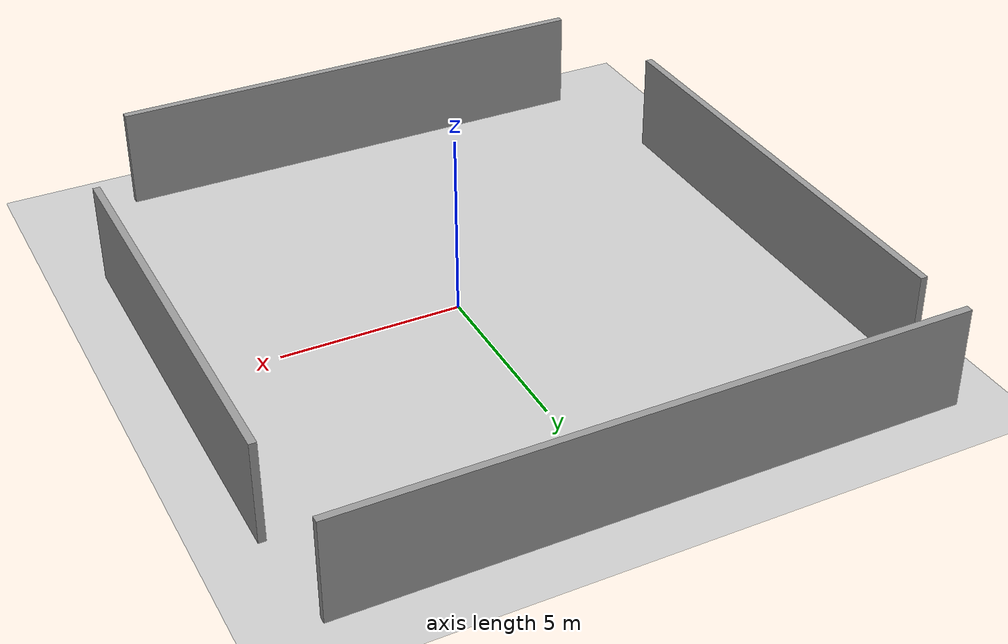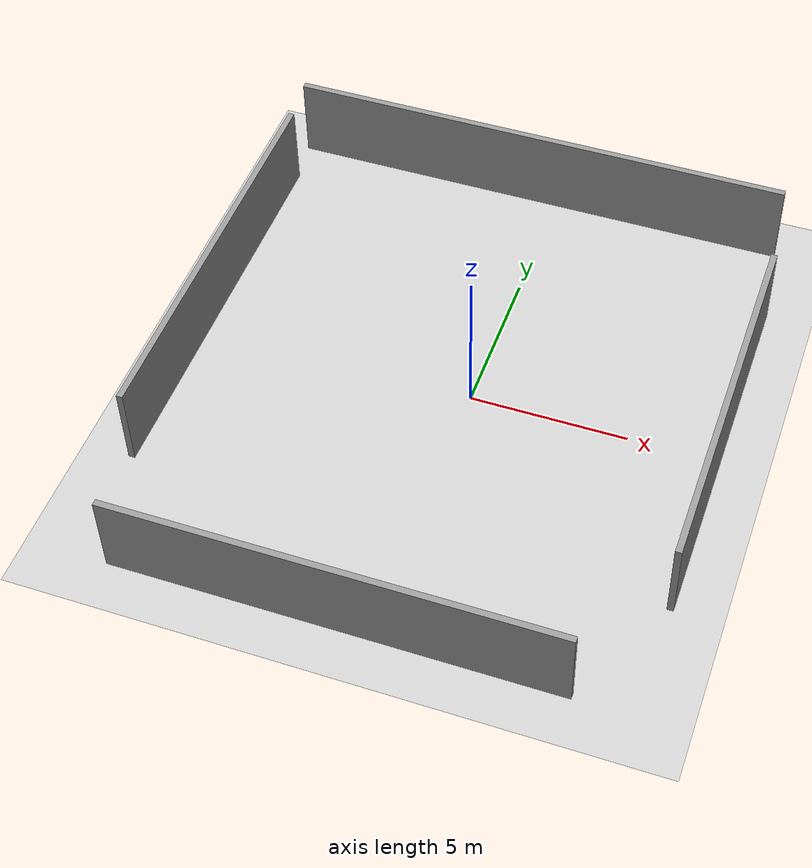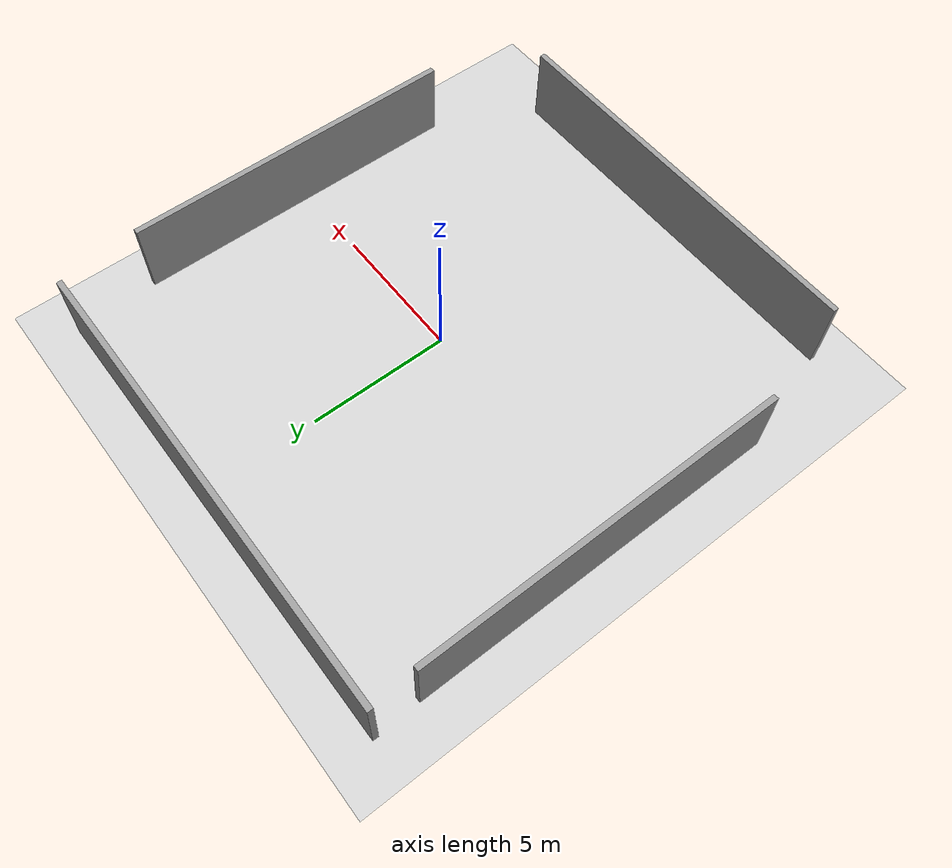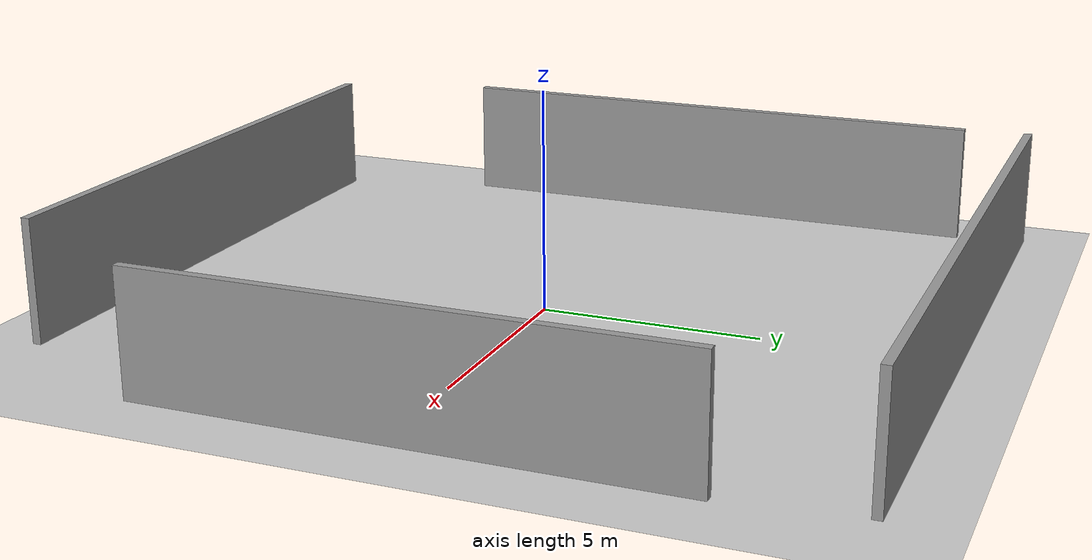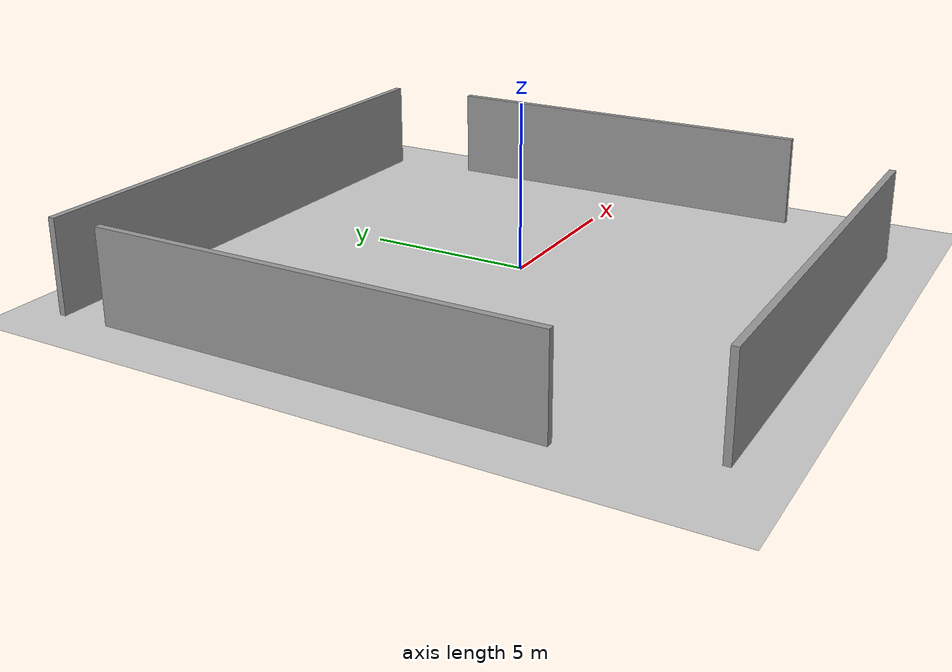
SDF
<sdf version="1.6">
 <world name="default">
  <light name="sun" type="directional">
   <pose>0 0 10 0 -0 0</pose>
   <diffuse>0.8 0.8 0.8 1</diffuse>
   <specular>0.2 0.2 0.2 1</specular>
   <attenuation>
    <range>1000</range>
    <constant>0.9</constant>
    <linear>0.01</linear>
    <quadratic>0.001</quadratic>
   </attenuation>
   <direction>-0.5 0.1 -0.9</direction>
  </light>
  <model name="ground_plane">
   <static>1</static>
   <link name="link">
    <collision name="collision">
     <geometry><plane><normal>0 0 1</normal><size>100 100</size></plane></geometry>
     <surface><friction><ode><mu>100</mu><mu2>50</mu2></ode></friction></surface>
    </collision>
    <visual name="visual">
     <cast_shadows>0</cast_shadows>
     <geometry><plane><normal>0 0 1</normal><size>100 100</size></plane></geometry>
     <material>
      <script><uri>file://media/materials/scripts/gazebo.material</uri><name>Gazebo/Grey</name></script>
     </material>
    </visual>
    <velocity_decay><linear>0</linear><angular>0</angular></velocity_decay>
   </link>
  </model>
  <physics name="default_physics" default="0" type="ode">
   <max_step_size>0.001</max_step_size>
   <real_time_factor>1</real_time_factor>
   <real_time_update_rate>1000</real_time_update_rate>
  </physics>
  <scene><ambient>0.4 0.4 0.4 1</ambient><background>0.7 0.7 0.7 1</background><shadows>1</shadows></scene>
  <spherical_coordinates>
   <surface_model>EARTH_WGS84</surface_model>
   <latitude_deg>0</latitude_deg>
   <longitude_deg>0</longitude_deg>
   <elevation>0</elevation>
   <heading_deg>0</heading_deg>
  </spherical_coordinates>
  <gravity>0 0 -9.8</gravity>
  <magnetic_field>6e-06 2.3e-05 -4.2e-05</magnetic_field>
  <atmosphere type="adiabatic"/>
  <model name="grey_wall">
   <link name="link">
    <pose>3.70961 1.62582 1.4 0 -0 0</pose>
    <velocity_decay><linear>0</linear><angular>0</angular></velocity_decay>
    <inertial>
     <inertia><ixx>0</ixx><ixy>0</ixy><ixz>0</ixz><iyy>0</iyy><iyz>0</iyz><izz>0</izz></inertia>
     <mass>0</mass>
    </inertial>
    <visual name="visual">
     <cast_shadows>0</cast_shadows>
     <geometry><box><size>16.6337 0.2 2.8</size></box></geometry>
     <material>
      <script>
       <uri>model://grey_wall/materials/scripts</uri>
       <uri>model://grey_wall/materials/textures</uri>
       <name>vrc/grey_wall</name>
      </script>
     </material>
    </visual>
    <collision name="collision">
     <geometry><box><size>16.6337 0.2 2.8</size></box></geometry>
     <surface>
      <friction>
       <ode><mu>1</mu><mu2>1</mu2><fdir1>0 0 0</fdir1><slip1>0</slip1><slip2>0</slip2></ode>
       <torsional>
        <coefficient>1</coefficient>
        <patch_radius>0</patch_radius>
        <surface_radius>0</surface_radius>
        <use_patch_radius>1</use_patch_radius>
        <ode><slip>0</slip></ode>
       </torsional>
      </friction>
      <bounce><restitution_coefficient>0</restitution_coefficient><threshold>1e+06</threshold></bounce>
      <contact>
       <collide_without_contact>0</collide_without_contact>
       <collide_without_contact_bitmask>1</collide_without_contact_bitmask>
       <collide_bitmask>1</collide_bitmask>
       <ode>
        <soft_cfm>0</soft_cfm>
        <soft_erp>0.2</soft_erp>
        <kp>1e+13</kp>
        <kd>1</kd>
        <max_vel>0.01</max_vel>
        <min_depth>0</min_depth>
       </ode>
       <bullet>
        <split_impulse>1</split_impulse>
        <split_impulse_penetration_threshold>-0.01</split_impulse_penetration_threshold>
        <soft_cfm>0</soft_cfm>
        <soft_erp>0.2</soft_erp>
        <kp>1e+13</kp>
        <kd>1</kd>
       </bullet>
      </contact>
     </surface>
    </collision>
   </link>
   <static>1</static>
   <pose>-4.48431 7.54607 0 0 -0 0</pose>
  </model>
  <model name="grey_wall_0">
   <link name="link">
    <pose>3.21001 -5.01815 1.4 0 -0 0</pose>
    <velocity_decay><linear>0</linear><angular>0</angular></velocity_decay>
    <inertial>
     <inertia><ixx>0</ixx><ixy>0</ixy><ixz>0</ixz><iyy>0</iyy><iyz>0</iyz><izz>0</izz></inertia>
     <mass>0</mass>
    </inertial>
    <visual name="visual">
     <cast_shadows>0</cast_shadows>
     <geometry><box><size>13.9336 0.2 2.8</size></box></geometry>
     <material>
      <script>
       <uri>model://grey_wall/materials/scripts</uri>
       <uri>model://grey_wall/materials/textures</uri>
       <name>vrc/grey_wall</name>
      </script>
     </material>
    </visual>
    <collision name="collision">
     <geometry><box><size>13.9336 0.2 2.8</size></box></geometry>
     <surface>
      <friction>
       <ode><mu>1</mu><mu2>1</mu2><fdir1>0 0 0</fdir1><slip1>0</slip1><slip2>0</slip2></ode>
       <torsional>
        <coefficient>1</coefficient>
        <patch_radius>0</patch_radius>
        <surface_radius>0</surface_radius>
        <use_patch_radius>1</use_patch_radius>
        <ode><slip>0</slip></ode>
       </torsional>
      </friction>
      <bounce><restitution_coefficient>0</restitution_coefficient><threshold>1e+06</threshold></bounce>
      <contact>
       <collide_without_contact>0</collide_without_contact>
       <collide_without_contact_bitmask>1</collide_without_contact_bitmask>
       <collide_bitmask>1</collide_bitmask>
       <ode>
        <soft_cfm>0</soft_cfm>
        <soft_erp>0.2</soft_erp>
        <kp>1e+13</kp>
        <kd>1</kd>
        <max_vel>0.01</max_vel>
        <min_depth>0</min_depth>
       </ode>
       <bullet>
        <split_impulse>1</split_impulse>
        <split_impulse_penetration_threshold>-0.01</split_impulse_penetration_threshold>
        <soft_cfm>0</soft_cfm>
        <soft_erp>0.2</soft_erp>
        <kp>1e+13</kp>
        <kd>1</kd>
       </bullet>
      </contact>
     </surface>
    </collision>
   </link>
   <static>1</static>
   <pose>-4.17438 -4.16628 0 0 -0 0</pose>
  </model>
  <model name="grey_wall_3">
   <link name="link">
    <pose>0.401574 1.3214 1.4 0 -0 0</pose>
    <velocity_decay><linear>0</linear><angular>0</angular></velocity_decay>
    <inertial>
     <inertia><ixx>0</ixx><ixy>0</ixy><ixz>0</ixz><iyy>0</iyy><iyz>0</iyz><izz>0</izz></inertia>
     <mass>0</mass>
    </inertial>
    <visual name="visual">
     <cast_shadows>0</cast_shadows>
     <geometry><box><size>11.9456 0.2 2.8</size></box></geometry>
     <material>
      <script>
       <uri>model://grey_wall/materials/scripts</uri>
       <uri>model://grey_wall/materials/textures</uri>
       <name>vrc/grey_wall</name>
      </script>
     </material>
    </visual>
    <collision name="collision">
     <geometry><box><size>11.9456 0.2 2.8</size></box></geometry>
     <surface>
      <friction>
       <ode><mu>1</mu><mu2>1</mu2><fdir1>0 0 0</fdir1><slip1>0</slip1><slip2>0</slip2></ode>
       <torsional>
        <coefficient>1</coefficient>
        <patch_radius>0</patch_radius>
        <surface_radius>0</surface_radius>
        <use_patch_radius>1</use_patch_radius>
        <ode><slip>0</slip></ode>
       </torsional>
      </friction>
      <bounce><restitution_coefficient>0</restitution_coefficient><threshold>1e+06</threshold></bounce>
      <contact>
       <collide_without_contact>0</collide_without_contact>
       <collide_without_contact_bitmask>1</collide_without_contact_bitmask>
       <collide_bitmask>1</collide_bitmask>
       <ode>
        <soft_cfm>0</soft_cfm>
        <soft_erp>0.2</soft_erp>
        <kp>1e+13</kp>
        <kd>1</kd>
        <max_vel>0.01</max_vel>
        <min_depth>0</min_depth>
       </ode>
       <bullet>
        <split_impulse>1</split_impulse>
        <split_impulse_penetration_threshold>-0.01</split_impulse_penetration_threshold>
        <soft_cfm>0</soft_cfm>
        <soft_erp>0.2</soft_erp>
        <kp>1e+13</kp>
        <kd>1</kd>
       </bullet>
      </contact>
     </surface>
    </collision>
   </link>
   <static>1</static>
   <pose>6.49832 0.747169 0.00212 0 0 -1.57102</pose>
  </model>
  <model name="grey_wall_3_clone">
   <link name="link">
    <pose>0.856552 1.3214 1.4 0 -0 0</pose>
    <velocity_decay><linear>0</linear><angular>0</angular></velocity_decay>
    <inertial>
     <inertia><ixx>0</ixx><ixy>0</ixy><ixz>0</ixz><iyy>0</iyy><iyz>0</iyz><izz>0</izz></inertia>
     <mass>0</mass>
    </inertial>
    <visual name="visual">
     <cast_shadows>0</cast_shadows>
     <geometry><box><size>13.1436 0.2 2.8</size></box></geometry>
     <material>
      <script>
       <uri>model://grey_wall/materials/scripts</uri>
       <uri>model://grey_wall/materials/textures</uri>
       <name>vrc/grey_wall</name>
      </script>
     </material>
    </visual>
    <collision name="collision">
     <geometry><box><size>13.1436 0.2 2.8</size></box></geometry>
     <surface>
      <friction>
       <ode><mu>1</mu><mu2>1</mu2><fdir1>0 0 0</fdir1><slip1>0</slip1><slip2>0</slip2></ode>
       <torsional>
        <coefficient>1</coefficient>
        <patch_radius>0</patch_radius>
        <surface_radius>0</surface_radius>
        <use_patch_radius>1</use_patch_radius>
        <ode><slip>0</slip></ode>
       </torsional>
      </friction>
      <bounce><restitution_coefficient>0</restitution_coefficient><threshold>1e+06</threshold></bounce>
      <contact>
       <collide_without_contact>0</collide_without_contact>
       <collide_without_contact_bitmask>1</collide_without_contact_bitmask>
       <collide_bitmask>1</collide_bitmask>
       <ode>
        <soft_cfm>0</soft_cfm>
        <soft_erp>0.2</soft_erp>
        <kp>1e+13</kp>
        <kd>1</kd>
        <max_vel>0.01</max_vel>
        <min_depth>0</min_depth>
       </ode>
       <bullet>
        <split_impulse>1</split_impulse>
        <split_impulse_penetration_threshold>-0.01</split_impulse_penetration_threshold>
        <soft_cfm>0</soft_cfm>
        <soft_erp>0.2</soft_erp>
        <kp>1e+13</kp>
        <kd>1</kd>
       </bullet>
      </contact>
     </surface>
    </collision>
   </link>
   <static>1</static>
   <pose>-10.2636 1.93091 0.00212 0 0 -1.57102</pose>
  </model>
  <plugin name="collision_map_creator" filename="libcollision_map_creator.so"/>
 </world>
</sdf>
